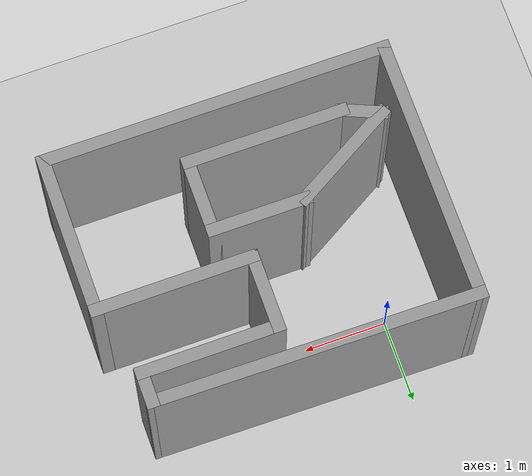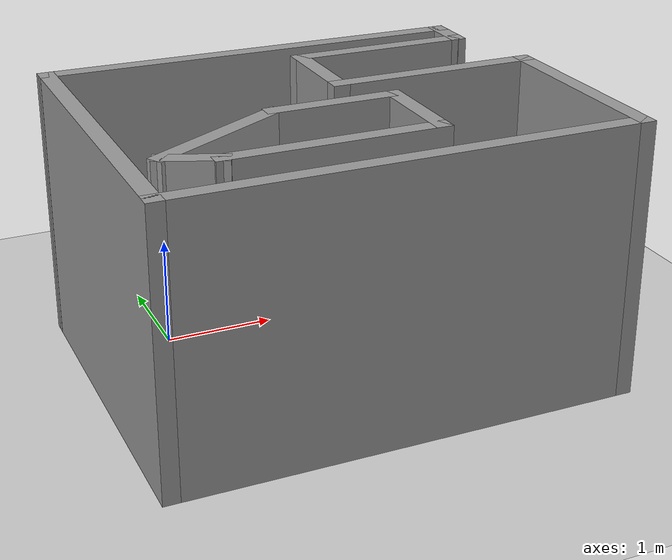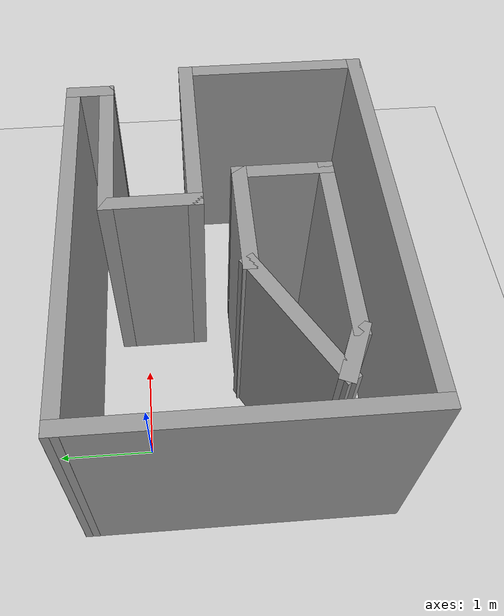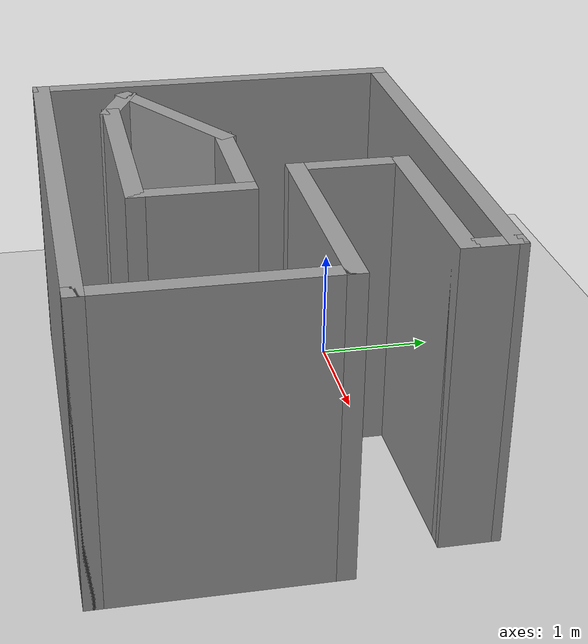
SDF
<sdf version="1.6">
 <world name="default">
  <light name="sun" type="directional">
   <pose>0 0 10 0 -0 0</pose>
   <diffuse>0.8 0.8 0.8 1</diffuse>
   <specular>0.2 0.2 0.2 1</specular>
   <attenuation>
    <range>1000</range>
    <constant>0.9</constant>
    <linear>0.01</linear>
    <quadratic>0.001</quadratic>
   </attenuation>
   <direction>-0.5 0.1 -0.9</direction>
  </light>
  <model name="ground_plane">
   <static>1</static>
   <link name="link">
    <collision name="collision">
     <geometry><plane><normal>0 0 1</normal><size>100 100</size></plane></geometry>
     <surface>
      <contact><collide_bitmask>65535</collide_bitmask></contact>
      <friction><ode><mu>100</mu><mu2>50</mu2></ode></friction>
     </surface>
    </collision>
    <visual name="visual">
     <cast_shadows>0</cast_shadows>
     <geometry><plane><normal>0 0 1</normal><size>100 100</size></plane></geometry>
     <material>
      <script><uri>file://media/materials/scripts/gazebo.material</uri><name>Gazebo/Grey</name></script>
     </material>
    </visual>
   </link>
  </model>
  <gravity>0 0 -9.8</gravity>
  <magnetic_field>6e-06 2.3e-05 -4.2e-05</magnetic_field>
  <atmosphere type="adiabatic"/>
  <physics name="default_physics" default="0" type="ode">
   <max_step_size>0.001</max_step_size>
   <real_time_factor>1</real_time_factor>
   <real_time_update_rate>1000</real_time_update_rate>
  </physics>
  <scene><ambient>0.4 0.4 0.4 1</ambient><background>0.7 0.7 0.7 1</background><shadows>1</shadows></scene>
  <audio><device>default</device></audio>
  <spherical_coordinates>
   <surface_model>EARTH_WGS84</surface_model>
   <latitude_deg>0</latitude_deg>
   <longitude_deg>0</longitude_deg>
   <elevation>0</elevation>
   <heading_deg>0</heading_deg>
  </spherical_coordinates>
  <model name="rmp009">
   <pose>1.25228 -0.919346 0 0 -0 0</pose>
   <link name="Wall_11">
    <collision name="Wall_11_Collision">
     <geometry><box><size>3.25 0.15 2.5</size></box></geometry>
     <pose>0 0 1.25 0 -0 0</pose>
    </collision>
    <visual name="Wall_11_Visual">
     <pose>0 0 1.25 0 -0 0</pose>
     <geometry><box><size>3.25 0.15 2.5</size></box></geometry>
     <material>
      <script><uri>file://media/materials/scripts/gazebo.material</uri><name>Gazebo/Grey</name></script>
      <ambient>1 1 1 1</ambient>
     </material>
     <meta><layer>0</layer></meta>
    </visual>
    <pose>-2.04952 -0.000484 0 0 -0 -1.5708</pose>
   </link>
   <link name="Wall_12">
    <collision name="Wall_12_Collision">
     <geometry><box><size>4.25 0.15 2.5</size></box></geometry>
     <pose>0 0 1.25 0 -0 0</pose>
    </collision>
    <visual name="Wall_12_Visual">
     <pose>0 0 1.25 0 -0 0</pose>
     <geometry><box><size>4.25 0.15 2.5</size></box></geometry>
     <material>
      <script><uri>file://media/materials/scripts/gazebo.material</uri><name>Gazebo/Grey</name></script>
      <ambient>1 1 1 1</ambient>
     </material>
     <meta><layer>0</layer></meta>
    </visual>
    <pose>0.000484 -1.55048 0 0 -0 0</pose>
   </link>
   <link name="Wall_13">
    <collision name="Wall_13_Collision">
     <geometry><box><size>2 0.15 2.5</size></box></geometry>
     <pose>0 0 1.25 0 -0 0</pose>
    </collision>
    <visual name="Wall_13_Visual">
     <pose>0 0 1.25 0 -0 0</pose>
     <geometry><box><size>2 0.15 2.5</size></box></geometry>
     <material>
      <script><uri>file://media/materials/scripts/gazebo.material</uri><name>Gazebo/Grey</name></script>
      <ambient>1 1 1 1</ambient>
     </material>
     <meta><layer>0</layer></meta>
    </visual>
    <pose>2.05048 -0.625484 0 0 -0 1.5708</pose>
   </link>
   <link name="Wall_14">
    <collision name="Wall_14_Collision">
     <geometry><box><size>2 0.15 2.5</size></box></geometry>
     <pose>0 0 1.25 0 -0 0</pose>
    </collision>
    <visual name="Wall_14_Visual">
     <pose>0 0 1.25 0 -0 0</pose>
     <geometry><box><size>2 0.15 2.5</size></box></geometry>
     <material>
      <script><uri>file://media/materials/scripts/gazebo.material</uri><name>Gazebo/Grey</name></script>
      <ambient>1 1 1 1</ambient>
     </material>
     <meta><layer>0</layer></meta>
    </visual>
    <pose>1.12548 0.299516 0 0 -0 3.14159</pose>
   </link>
   <link name="Wall_15">
    <collision name="Wall_15_Collision">
     <geometry><box><size>1 0.15 2.5</size></box></geometry>
     <pose>0 0 1.25 0 -0 0</pose>
    </collision>
    <visual name="Wall_15_Visual">
     <pose>0 0 1.25 0 -0 0</pose>
     <geometry><box><size>1 0.15 2.5</size></box></geometry>
     <material>
      <script><uri>file://media/materials/scripts/gazebo.material</uri><name>Gazebo/Grey</name></script>
      <ambient>1 1 1 1</ambient>
     </material>
     <meta><layer>0</layer></meta>
    </visual>
    <pose>0.200484 0.724516 0 0 -0 1.5708</pose>
   </link>
   <link name="Wall_16">
    <collision name="Wall_16_Collision">
     <geometry><box><size>1.75 0.15 2.5</size></box></geometry>
     <pose>0 0 1.25 0 -0 0</pose>
    </collision>
    <visual name="Wall_16_Visual">
     <pose>0 0 1.25 0 -0 0</pose>
     <geometry><box><size>1.75 0.15 2.5</size></box></geometry>
     <material>
      <script><uri>file://media/materials/scripts/gazebo.material</uri><name>Gazebo/Grey</name></script>
      <ambient>1 1 1 1</ambient>
     </material>
     <meta><layer>0</layer></meta>
    </visual>
    <pose>1.00048 1.14952 0 0 -0 0</pose>
   </link>
   <link name="Wall_17">
    <collision name="Wall_17_Collision">
     <geometry><box><size>0.5 0.15 2.5</size></box></geometry>
     <pose>0 0 1.25 0 -0 0</pose>
    </collision>
    <visual name="Wall_17_Visual">
     <pose>0 0 1.25 0 -0 0</pose>
     <geometry><box><size>0.5 0.15 2.5</size></box></geometry>
     <material>
      <script><uri>file://media/materials/scripts/gazebo.material</uri><name>Gazebo/Grey</name></script>
      <ambient>1 1 1 1</ambient>
     </material>
     <meta><layer>0</layer></meta>
    </visual>
    <pose>1.80048 1.32452 0 0 -0 1.5708</pose>
   </link>
   <link name="Wall_18">
    <collision name="Wall_18_Collision">
     <geometry><box><size>4.00033 0.15 2.5</size></box></geometry>
     <pose>0 0 1.25 0 -0 0</pose>
    </collision>
    <visual name="Wall_18_Visual">
     <pose>0 0 1.25 0 -0 0</pose>
     <geometry><box><size>4.00033 0.15 2.5</size></box></geometry>
     <material>
      <script><uri>file://media/materials/scripts/gazebo.material</uri><name>Gazebo/Grey</name></script>
      <ambient>1 1 1 1</ambient>
     </material>
     <meta><layer>0</layer></meta>
    </visual>
    <pose>-0.124516 1.52452 0 0 -0 3.12861</pose>
   </link>
   <link name="Wall_20">
    <collision name="Wall_20_Collision">
     <geometry><box><size>1.5 0.15 2.5</size></box></geometry>
     <pose>0 0 1.25 0 -0 0</pose>
    </collision>
    <visual name="Wall_20_Visual">
     <pose>0 0 1.25 0 -0 0</pose>
     <geometry><box><size>1.5 0.15 2.5</size></box></geometry>
     <material>
      <script><uri>file://media/materials/scripts/gazebo.material</uri><name>Gazebo/Grey</name></script>
      <ambient>1 1 1 1</ambient>
     </material>
     <meta><layer>0</layer></meta>
    </visual>
    <pose>-1.16907 -0.480042 0 0 -0 0.523599</pose>
   </link>
   <link name="Wall_21">
    <collision name="Wall_21_Collision">
     <geometry><box><size>1.25 0.15 2.5</size></box></geometry>
     <pose>0 0 1.25 0 -0 0</pose>
    </collision>
    <visual name="Wall_21_Visual">
     <pose>0 0 1.25 0 -0 0</pose>
     <geometry><box><size>1.25 0.15 2.5</size></box></geometry>
     <material>
      <script><uri>file://media/materials/scripts/gazebo.material</uri><name>Gazebo/Grey</name></script>
      <ambient>1 1 1 1</ambient>
     </material>
     <meta><layer>0</layer></meta>
    </visual>
    <pose>-0.034499 -0.142542 0 0 -0 0</pose>
   </link>
   <link name="Wall_22">
    <collision name="Wall_22_Collision">
     <geometry><box><size>1 0.15 2.5</size></box></geometry>
     <pose>0 0 1.25 0 -0 0</pose>
    </collision>
    <visual name="Wall_22_Visual">
     <pose>0 0 1.25 0 -0 0</pose>
     <geometry><box><size>1 0.15 2.5</size></box></geometry>
     <material>
      <script><uri>file://media/materials/scripts/gazebo.material</uri><name>Gazebo/Grey</name></script>
      <ambient>1 1 1 1</ambient>
     </material>
     <meta><layer>0</layer></meta>
    </visual>
    <pose>0.515501 -0.567542 0 0 -0 -1.5708</pose>
   </link>
   <link name="Wall_23">
    <collision name="Wall_23_Collision">
     <geometry><box><size>2 0.15 2.5</size></box></geometry>
     <pose>0 0 1.25 0 -0 0</pose>
    </collision>
    <visual name="Wall_23_Visual">
     <pose>0 0 1.25 0 -0 0</pose>
     <geometry><box><size>2 0.15 2.5</size></box></geometry>
     <material>
      <script><uri>file://media/materials/scripts/gazebo.material</uri><name>Gazebo/Grey</name></script>
      <ambient>1 1 1 1</ambient>
     </material>
     <meta><layer>0</layer></meta>
    </visual>
    <pose>-0.409499 -0.992542 0 0 -0 3.14159</pose>
   </link>
   <link name="Wall_24">
    <collision name="Wall_24_Collision">
     <geometry><box><size>0.604201 0.15 2.5</size></box></geometry>
     <pose>0 0 1.25 0 -0 0</pose>
    </collision>
    <visual name="Wall_24_Visual">
     <pose>0 0 1.25 0 -0 0</pose>
     <geometry><box><size>0.604201 0.15 2.5</size></box></geometry>
     <material>
      <script><uri>file://media/materials/scripts/gazebo.material</uri><name>Gazebo/Grey</name></script>
      <ambient>1 1 1 1</ambient>
     </material>
     <meta><layer>0</layer></meta>
    </visual>
    <pose>-1.54407 -0.905042 0 0 -0 2.74607</pose>
   </link>
   <static>1</static>
  </model>
 </world>
</sdf>
